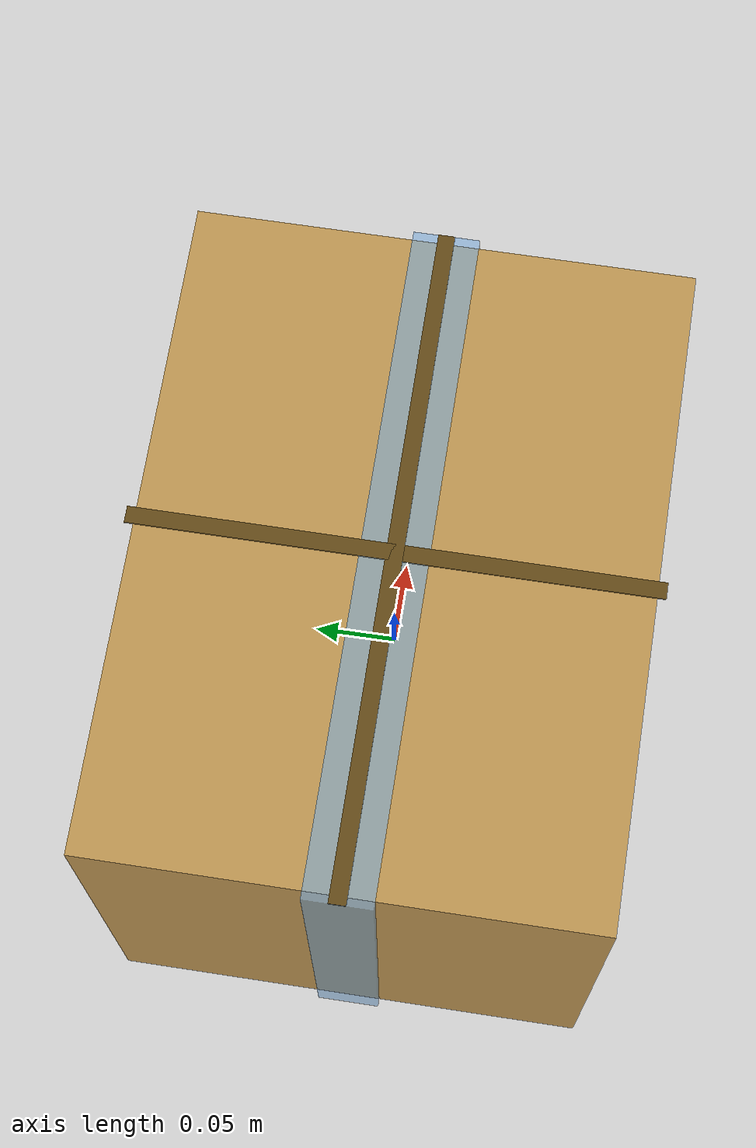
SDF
<?xml version="1.0"?>
<sdf version="1.7">
  <model name="carton_box">
    <static>false</static>
    <link name="link">
      <inertial>
        <mass>2.0</mass>
        <inertia>
          <ixx>0.025</ixx><ixy>0</ixy><ixz>0</ixz>
          <iyy>0.030</iyy><iyz>0</iyz><izz>0.020</izz>
        </inertia>
      </inertial>
      <collision name="col">
        <geometry><box><size>0.40 0.30 0.30</size></box></geometry>
        <surface>
          <contact><ode><kp>1e6</kp><kd>1.0</kd></ode></contact>
          <friction><ode><mu>0.6</mu><mu2>0.6</mu2></ode></friction>
        </surface>
      </collision>
      <!-- Main box body -->
      <visual name="box_body">
        <geometry><box><size>0.40 0.30 0.30</size></box></geometry>
        <material>
          <ambient>0.76 0.60 0.33 1</ambient>
          <diffuse>0.76 0.60 0.33 1</diffuse>
          <specular>0.1 0.1 0.1 1</specular>
        </material>
      </visual>
      <!-- Top crease lines (dark strips) -->
      <visual name="crease_x">
        <pose>0 0 0.151 0 0 0</pose>
        <geometry><box><size>0.41 0.01 0.001</size></box></geometry>
        <material><ambient>0.4 0.3 0.1 1</ambient></material>
      </visual>
      <visual name="crease_y">
        <pose>0 0 0.151 0 0 0</pose>
        <geometry><box><size>0.01 0.31 0.001</size></box></geometry>
        <material><ambient>0.4 0.3 0.1 1</ambient></material>
      </visual>
      <!-- Tape strip -->
      <visual name="tape">
        <pose>0 0 0 0 0 0</pose>
        <geometry><box><size>0.41 0.04 0.302</size></box></geometry>
        <material><ambient>0.5 0.7 0.9 0.6</ambient><diffuse>0.5 0.7 0.9 0.6</diffuse></material>
      </visual>
    </link>
  </model>
</sdf>
